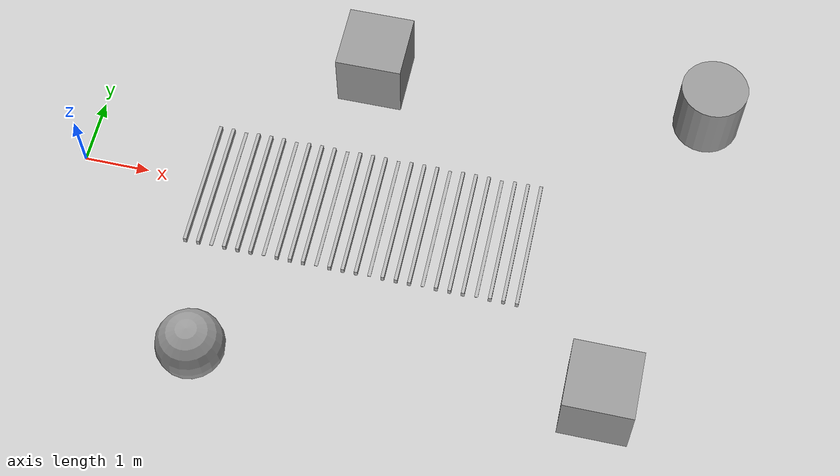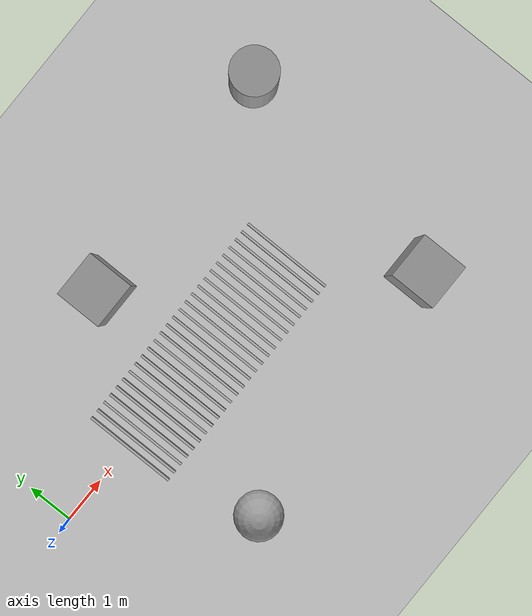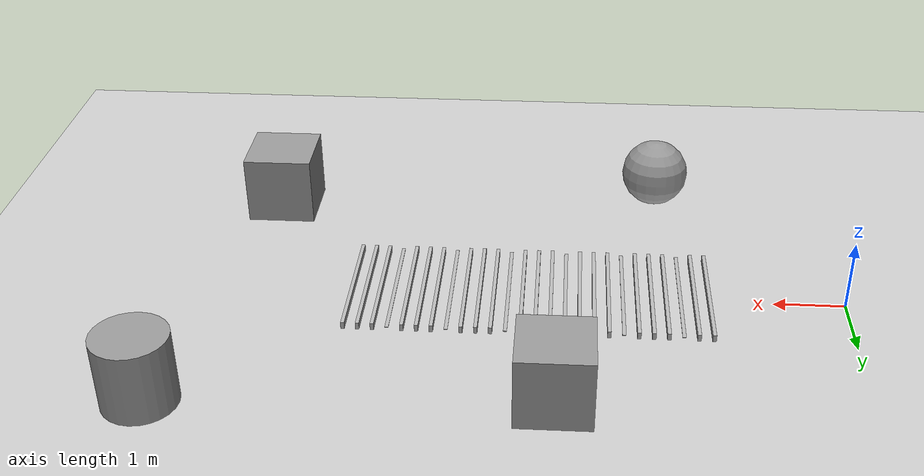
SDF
<sdf version="1.6">
 <world name="default">
  <light name="sun" type="directional">
   <pose>0 0 10 0 -0 0</pose>
   <diffuse>0.8 0.8 0.8 1</diffuse>
   <specular>0.2 0.2 0.2 1</specular>
   <attenuation>
    <range>1000</range>
    <constant>0.9</constant>
    <linear>0.01</linear>
    <quadratic>0.001</quadratic>
   </attenuation>
   <direction>-0.5 0.1 -0.9</direction>
  </light>
  <model name="ground_plane">
   <static>1</static>
   <link name="link">
    <collision name="collision">
     <geometry><plane><normal>0 0 1</normal><size>100 100</size></plane></geometry>
     <surface>
      <contact><collide_bitmask>65535</collide_bitmask></contact>
      <friction><ode><mu>100</mu><mu2>50</mu2></ode></friction>
     </surface>
    </collision>
    <visual name="visual">
     <cast_shadows>0</cast_shadows>
     <geometry><plane><normal>0 0 1</normal><size>100 100</size></plane></geometry>
     <material>
      <script><uri>file://media/materials/scripts/gazebo.material</uri><name>Gazebo/Grey</name></script>
     </material>
    </visual>
   </link>
  </model>
  <gravity>0 0 -9.8</gravity>
  <magnetic_field>6e-06 2.3e-05 -4.2e-05</magnetic_field>
  <atmosphere type="adiabatic"/>
  <physics name="default_physics" default="0" type="ode">
   <max_step_size>0.001</max_step_size>
   <real_time_factor>1</real_time_factor>
   <real_time_update_rate>1000</real_time_update_rate>
  </physics>
  <scene><ambient>0.4 0.4 0.4 1</ambient><background>0.7 0.7 0.7 1</background><shadows>1</shadows></scene>
  <audio><device>default</device></audio>
  <spherical_coordinates>
   <surface_model>EARTH_WGS84</surface_model>
   <latitude_deg>0</latitude_deg>
   <longitude_deg>0</longitude_deg>
   <elevation>0</elevation>
   <heading_deg>0</heading_deg>
  </spherical_coordinates>
  <model name="my_model">
   <link name="bot_wall0">
    <visual name="visual">
     <geometry><box><size>0.05 2 0.1</size></box></geometry>
     <material><script><uri>model://hallway/materials/scripts</uri><name>feature_3</name></script></material>
    </visual>
    <collision name="collision"><geometry><box><size>0.05 2 0.1</size></box></geometry></collision>
    <inertial>
     <inertia><ixx>1</ixx><ixy>0</ixy><ixz>0</ixz><iyy>1</iyy><iyz>0</iyz><izz>1</izz></inertia>
     <mass>1</mass>
    </inertial>
   </link>
   <link name="bot_wall1">
    <pose>0.2 0 0 0 -0 0</pose>
    <visual name="visual">
     <geometry><box><size>0.05 2 0.1</size></box></geometry>
     <material><script><uri>model://hallway/materials/scripts</uri><name>feature_3</name></script></material>
    </visual>
    <collision name="collision"><geometry><box><size>0.05 2 0.1</size></box></geometry></collision>
    <inertial>
     <inertia><ixx>1</ixx><ixy>0</ixy><ixz>0</ixz><iyy>1</iyy><iyz>0</iyz><izz>1</izz></inertia>
     <mass>1</mass>
    </inertial>
   </link>
   <link name="bot_wall2">
    <pose>0.4 0 0 0 -0 0</pose>
    <visual name="visual">
     <geometry><box><size>0.05 2 0.01</size></box></geometry>
     <material><script><uri>model://hallway/materials/scripts</uri><name>feature_3</name></script></material>
    </visual>
    <collision name="collision"><geometry><box><size>0.05 2 0.01</size></box></geometry></collision>
    <inertial>
     <inertia><ixx>1</ixx><ixy>0</ixy><ixz>0</ixz><iyy>1</iyy><iyz>0</iyz><izz>1</izz></inertia>
     <mass>1</mass>
    </inertial>
   </link>
   <link name="bot_wall3">
    <pose>0.6 0 0 0 -0 0</pose>
    <visual name="visual">
     <geometry><box><size>0.05 2 0.1</size></box></geometry>
     <material><script><uri>model://hallway/materials/scripts</uri><name>feature_3</name></script></material>
    </visual>
    <collision name="collision"><geometry><box><size>0.05 2 0.1</size></box></geometry></collision>
    <inertial>
     <inertia><ixx>1</ixx><ixy>0</ixy><ixz>0</ixz><iyy>1</iyy><iyz>0</iyz><izz>1</izz></inertia>
     <mass>1</mass>
    </inertial>
   </link>
   <link name="bot_wall4">
    <pose>0.8 0 0 0 -0 0</pose>
    <visual name="visual">
     <geometry><box><size>0.05 2 0.1</size></box></geometry>
     <material><script><uri>model://hallway/materials/scripts</uri><name>feature_3</name></script></material>
    </visual>
    <collision name="collision"><geometry><box><size>0.05 2 0.1</size></box></geometry></collision>
    <inertial>
     <inertia><ixx>1</ixx><ixy>0</ixy><ixz>0</ixz><iyy>1</iyy><iyz>0</iyz><izz>1</izz></inertia>
     <mass>1</mass>
    </inertial>
   </link>
   <link name="bot_wall5">
    <pose>1 0 0 0 -0 0</pose>
    <visual name="visual">
     <geometry><box><size>0.05 2 0.1</size></box></geometry>
     <material><script><uri>model://hallway/materials/scripts</uri><name>feature_3</name></script></material>
    </visual>
    <collision name="collision"><geometry><box><size>0.05 2 0.1</size></box></geometry></collision>
    <inertial>
     <inertia><ixx>1</ixx><ixy>0</ixy><ixz>0</ixz><iyy>1</iyy><iyz>0</iyz><izz>1</izz></inertia>
     <mass>1</mass>
    </inertial>
   </link>
   <link name="bot_wall6">
    <pose>1.2 0 0 0 -0 0</pose>
    <visual name="visual">
     <geometry><box><size>0.05 2 0.01</size></box></geometry>
     <material><script><uri>model://hallway/materials/scripts</uri><name>feature_3</name></script></material>
    </visual>
    <collision name="collision"><geometry><box><size>0.05 2 0.01</size></box></geometry></collision>
    <inertial>
     <inertia><ixx>1</ixx><ixy>0</ixy><ixz>0</ixz><iyy>1</iyy><iyz>0</iyz><izz>1</izz></inertia>
     <mass>1</mass>
    </inertial>
   </link>
   <link name="bot_wall7">
    <pose>1.4 0 0 0 -0 0</pose>
    <visual name="visual">
     <geometry><box><size>0.05 2 0.1</size></box></geometry>
     <material><script><uri>model://hallway/materials/scripts</uri><name>feature_3</name></script></material>
    </visual>
    <collision name="collision"><geometry><box><size>0.05 2 0.1</size></box></geometry></collision>
    <inertial>
     <inertia><ixx>1</ixx><ixy>0</ixy><ixz>0</ixz><iyy>1</iyy><iyz>0</iyz><izz>1</izz></inertia>
     <mass>1</mass>
    </inertial>
   </link>
   <link name="bot_wall8">
    <pose>1.6 0 0 0 -0 0</pose>
    <visual name="visual">
     <geometry><box><size>0.05 2 0.1</size></box></geometry>
     <material><script><uri>model://hallway/materials/scripts</uri><name>feature_3</name></script></material>
    </visual>
    <collision name="collision"><geometry><box><size>0.05 2 0.1</size></box></geometry></collision>
    <inertial>
     <inertia><ixx>1</ixx><ixy>0</ixy><ixz>0</ixz><iyy>1</iyy><iyz>0</iyz><izz>1</izz></inertia>
     <mass>1</mass>
    </inertial>
   </link>
   <link name="bot_wall9">
    <pose>1.8 0 0 0 -0 0</pose>
    <visual name="visual">
     <geometry><box><size>0.05 2 0.1</size></box></geometry>
     <material><script><uri>model://hallway/materials/scripts</uri><name>feature_3</name></script></material>
    </visual>
    <collision name="collision"><geometry><box><size>0.05 2 0.1</size></box></geometry></collision>
    <inertial>
     <inertia><ixx>1</ixx><ixy>0</ixy><ixz>0</ixz><iyy>1</iyy><iyz>0</iyz><izz>1</izz></inertia>
     <mass>1</mass>
    </inertial>
   </link>
   <link name="bot_wall10">
    <pose>2 0 0 0 -0 0</pose>
    <visual name="visual">
     <geometry><box><size>0.05 2 0.01</size></box></geometry>
     <material><script><uri>model://hallway/materials/scripts</uri><name>feature_3</name></script></material>
    </visual>
    <collision name="collision"><geometry><box><size>0.05 2 0.01</size></box></geometry></collision>
    <inertial>
     <inertia><ixx>1</ixx><ixy>0</ixy><ixz>0</ixz><iyy>1</iyy><iyz>0</iyz><izz>1</izz></inertia>
     <mass>1</mass>
    </inertial>
   </link>
   <link name="bot_wall11">
    <pose>2.2 0 0 0 -0 0</pose>
    <visual name="visual">
     <geometry><box><size>0.05 2 0.1</size></box></geometry>
     <material><script><uri>model://hallway/materials/scripts</uri><name>feature_3</name></script></material>
    </visual>
    <collision name="collision"><geometry><box><size>0.05 2 0.1</size></box></geometry></collision>
    <inertial>
     <inertia><ixx>1</ixx><ixy>0</ixy><ixz>0</ixz><iyy>1</iyy><iyz>0</iyz><izz>1</izz></inertia>
     <mass>1</mass>
    </inertial>
   </link>
   <link name="bot_wall12">
    <pose>2.4 0 0 0 -0 0</pose>
    <visual name="visual">
     <geometry><box><size>0.05 2 0.1</size></box></geometry>
     <material><script><uri>model://hallway/materials/scripts</uri><name>feature_3</name></script></material>
    </visual>
    <collision name="collision"><geometry><box><size>0.05 2 0.1</size></box></geometry></collision>
    <inertial>
     <inertia><ixx>1</ixx><ixy>0</ixy><ixz>0</ixz><iyy>1</iyy><iyz>0</iyz><izz>1</izz></inertia>
     <mass>1</mass>
    </inertial>
   </link>
   <link name="bot_wall13">
    <pose>2.6 0 0 0 -0 0</pose>
    <visual name="visual">
     <geometry><box><size>0.05 2 0.1</size></box></geometry>
     <material><script><uri>model://hallway/materials/scripts</uri><name>feature_3</name></script></material>
    </visual>
    <collision name="collision"><geometry><box><size>0.05 2 0.1</size></box></geometry></collision>
    <inertial>
     <inertia><ixx>1</ixx><ixy>0</ixy><ixz>0</ixz><iyy>1</iyy><iyz>0</iyz><izz>1</izz></inertia>
     <mass>1</mass>
    </inertial>
   </link>
   <link name="bot_wall14">
    <pose>2.8 0 0 0 -0 0</pose>
    <visual name="visual">
     <geometry><box><size>0.05 2 0.01</size></box></geometry>
     <material><script><uri>model://hallway/materials/scripts</uri><name>feature_3</name></script></material>
    </visual>
    <collision name="collision"><geometry><box><size>0.05 2 0.01</size></box></geometry></collision>
    <inertial>
     <inertia><ixx>1</ixx><ixy>0</ixy><ixz>0</ixz><iyy>1</iyy><iyz>0</iyz><izz>1</izz></inertia>
     <mass>1</mass>
    </inertial>
   </link>
   <link name="bot_wall15">
    <pose>3 0 0 0 -0 0</pose>
    <visual name="visual">
     <geometry><box><size>0.05 2 0.1</size></box></geometry>
     <material><script><uri>model://hallway/materials/scripts</uri><name>feature_3</name></script></material>
    </visual>
    <collision name="collision"><geometry><box><size>0.05 2 0.1</size></box></geometry></collision>
    <inertial>
     <inertia><ixx>1</ixx><ixy>0</ixy><ixz>0</ixz><iyy>1</iyy><iyz>0</iyz><izz>1</izz></inertia>
     <mass>1</mass>
    </inertial>
   </link>
   <link name="bot_wall16">
    <pose>3.2 0 0 0 -0 0</pose>
    <visual name="visual">
     <geometry><box><size>0.05 2 0.1</size></box></geometry>
     <material><script><uri>model://hallway/materials/scripts</uri><name>feature_3</name></script></material>
    </visual>
    <collision name="collision"><geometry><box><size>0.05 2 0.1</size></box></geometry></collision>
    <inertial>
     <inertia><ixx>1</ixx><ixy>0</ixy><ixz>0</ixz><iyy>1</iyy><iyz>0</iyz><izz>1</izz></inertia>
     <mass>1</mass>
    </inertial>
   </link>
   <link name="bot_wall17">
    <pose>3.4 0 0 0 -0 0</pose>
    <visual name="visual">
     <geometry><box><size>0.05 2 0.1</size></box></geometry>
     <material><script><uri>model://hallway/materials/scripts</uri><name>feature_3</name></script></material>
    </visual>
    <collision name="collision"><geometry><box><size>0.05 2 0.1</size></box></geometry></collision>
    <inertial>
     <inertia><ixx>1</ixx><ixy>0</ixy><ixz>0</ixz><iyy>1</iyy><iyz>0</iyz><izz>1</izz></inertia>
     <mass>1</mass>
    </inertial>
   </link>
   <link name="bot_wall18">
    <pose>3.6 0 0 0 -0 0</pose>
    <visual name="visual">
     <geometry><box><size>0.05 2 0.01</size></box></geometry>
     <material><script><uri>model://hallway/materials/scripts</uri><name>feature_3</name></script></material>
    </visual>
    <collision name="collision"><geometry><box><size>0.05 2 0.01</size></box></geometry></collision>
    <inertial>
     <inertia><ixx>1</ixx><ixy>0</ixy><ixz>0</ixz><iyy>1</iyy><iyz>0</iyz><izz>1</izz></inertia>
     <mass>1</mass>
    </inertial>
   </link>
   <link name="bot_wall19">
    <pose>3.8 0 0 0 -0 0</pose>
    <visual name="visual">
     <geometry><box><size>0.05 2 0.1</size></box></geometry>
     <material><script><uri>model://hallway/materials/scripts</uri><name>feature_3</name></script></material>
    </visual>
    <collision name="collision"><geometry><box><size>0.05 2 0.1</size></box></geometry></collision>
    <inertial>
     <inertia><ixx>1</ixx><ixy>0</ixy><ixz>0</ixz><iyy>1</iyy><iyz>0</iyz><izz>1</izz></inertia>
     <mass>1</mass>
    </inertial>
   </link>
   <link name="bot_wall20">
    <pose>4 0 0 0 -0 0</pose>
    <visual name="visual">
     <geometry><box><size>0.05 2 0.1</size></box></geometry>
     <material><script><uri>model://hallway/materials/scripts</uri><name>feature_3</name></script></material>
    </visual>
    <collision name="collision"><geometry><box><size>0.05 2 0.1</size></box></geometry></collision>
    <inertial>
     <inertia><ixx>1</ixx><ixy>0</ixy><ixz>0</ixz><iyy>1</iyy><iyz>0</iyz><izz>1</izz></inertia>
     <mass>1</mass>
    </inertial>
   </link>
   <link name="bot_wall21">
    <pose>4.2 0 0 0 -0 0</pose>
    <visual name="visual">
     <geometry><box><size>0.05 2 0.1</size></box></geometry>
     <material><script><uri>model://hallway/materials/scripts</uri><name>feature_3</name></script></material>
    </visual>
    <collision name="collision"><geometry><box><size>0.05 2 0.1</size></box></geometry></collision>
    <inertial>
     <inertia><ixx>1</ixx><ixy>0</ixy><ixz>0</ixz><iyy>1</iyy><iyz>0</iyz><izz>1</izz></inertia>
     <mass>1</mass>
    </inertial>
   </link>
   <link name="bot_wall22">
    <pose>4.4 0 0 0 -0 0</pose>
    <visual name="visual">
     <geometry><box><size>0.05 2 0.01</size></box></geometry>
     <material><script><uri>model://hallway/materials/scripts</uri><name>feature_3</name></script></material>
    </visual>
    <collision name="collision"><geometry><box><size>0.05 2 0.01</size></box></geometry></collision>
    <inertial>
     <inertia><ixx>1</ixx><ixy>0</ixy><ixz>0</ixz><iyy>1</iyy><iyz>0</iyz><izz>1</izz></inertia>
     <mass>1</mass>
    </inertial>
   </link>
   <link name="bot_wall23">
    <pose>4.6 0 0 0 -0 0</pose>
    <visual name="visual">
     <geometry><box><size>0.05 2 0.1</size></box></geometry>
     <material><script><uri>model://hallway/materials/scripts</uri><name>feature_3</name></script></material>
    </visual>
    <collision name="collision"><geometry><box><size>0.05 2 0.1</size></box></geometry></collision>
    <inertial>
     <inertia><ixx>1</ixx><ixy>0</ixy><ixz>0</ixz><iyy>1</iyy><iyz>0</iyz><izz>1</izz></inertia>
     <mass>1</mass>
    </inertial>
   </link>
   <link name="bot_wall24">
    <pose>4.8 0 0 0 -0 0</pose>
    <visual name="visual">
     <geometry><box><size>0.05 2 0.1</size></box></geometry>
     <material><script><uri>model://hallway/materials/scripts</uri><name>feature_3</name></script></material>
    </visual>
    <collision name="collision"><geometry><box><size>0.05 2 0.1</size></box></geometry></collision>
    <inertial>
     <inertia><ixx>1</ixx><ixy>0</ixy><ixz>0</ixz><iyy>1</iyy><iyz>0</iyz><izz>1</izz></inertia>
     <mass>1</mass>
    </inertial>
   </link>
   <link name="bot_wall25">
    <pose>5 0 0 0 -0 0</pose>
    <visual name="visual">
     <geometry><box><size>0.05 2 0.1</size></box></geometry>
     <material><script><uri>model://hallway/materials/scripts</uri><name>feature_3</name></script></material>
    </visual>
    <collision name="collision"><geometry><box><size>0.05 2 0.1</size></box></geometry></collision>
    <inertial>
     <inertia><ixx>1</ixx><ixy>0</ixy><ixz>0</ixz><iyy>1</iyy><iyz>0</iyz><izz>1</izz></inertia>
     <mass>1</mass>
    </inertial>
   </link>
   <joint name="joint0" type="fixed"><parent>bot_wall0</parent><child>bot_wall1</child></joint>
   <joint name="joint1" type="fixed"><parent>bot_wall1</parent><child>bot_wall2</child></joint>
   <joint name="joint2" type="fixed"><parent>bot_wall2</parent><child>bot_wall3</child></joint>
   <joint name="joint3" type="fixed"><parent>bot_wall3</parent><child>bot_wall4</child></joint>
   <joint name="joint4" type="fixed"><parent>bot_wall4</parent><child>bot_wall5</child></joint>
   <joint name="joint5" type="fixed"><parent>bot_wall5</parent><child>bot_wall6</child></joint>
   <joint name="joint6" type="fixed"><parent>bot_wall6</parent><child>bot_wall7</child></joint>
   <joint name="joint7" type="fixed"><parent>bot_wall7</parent><child>bot_wall8</child></joint>
   <joint name="joint8" type="fixed"><parent>bot_wall8</parent><child>bot_wall9</child></joint>
   <joint name="joint9" type="fixed"><parent>bot_wall9</parent><child>bot_wall10</child></joint>
   <joint name="joint10" type="fixed"><parent>bot_wall10</parent><child>bot_wall11</child></joint>
   <joint name="joint11" type="fixed"><parent>bot_wall11</parent><child>bot_wall12</child></joint>
   <joint name="joint12" type="fixed"><parent>bot_wall12</parent><child>bot_wall13</child></joint>
   <joint name="joint13" type="fixed"><parent>bot_wall13</parent><child>bot_wall14</child></joint>
   <joint name="joint14" type="fixed"><parent>bot_wall14</parent><child>bot_wall15</child></joint>
   <joint name="joint15" type="fixed"><parent>bot_wall15</parent><child>bot_wall16</child></joint>
   <joint name="joint16" type="fixed"><parent>bot_wall16</parent><child>bot_wall17</child></joint>
   <joint name="joint17" type="fixed"><parent>bot_wall17</parent><child>bot_wall18</child></joint>
   <joint name="joint18" type="fixed"><parent>bot_wall18</parent><child>bot_wall19</child></joint>
   <joint name="joint19" type="fixed"><parent>bot_wall19</parent><child>bot_wall20</child></joint>
   <joint name="joint20" type="fixed"><parent>bot_wall20</parent><child>bot_wall21</child></joint>
   <joint name="joint21" type="fixed"><parent>bot_wall21</parent><child>bot_wall22</child></joint>
   <joint name="joint22" type="fixed"><parent>bot_wall22</parent><child>bot_wall23</child></joint>
   <joint name="joint23" type="fixed"><parent>bot_wall23</parent><child>bot_wall24</child></joint>
   <joint name="joint24" type="fixed"><parent>bot_wall24</parent><child>bot_wall25</child></joint>
   <pose>1.88491 -0.058567 0.049995 -1e-06 -1e-06 7.4e-05</pose>
  </model>
  <model name="unit_box">
   <pose>3.99988 2.38803 0.499995 -1e-05 -0 -0</pose>
   <link name="link">
    <inertial>
     <mass>1</mass>
     <inertia>
      <ixx>0.166667</ixx>
      <ixy>0</ixy>
      <ixz>0</ixz>
      <iyy>0.166667</iyy>
      <iyz>0</iyz>
      <izz>0.166667</izz>
     </inertia>
    </inertial>
    <collision name="collision"><geometry><box><size>1 1 1</size></box></geometry></collision>
    <visual name="visual">
     <geometry><box><size>1 1 1</size></box></geometry>
     <material>
      <script><name>Gazebo/Grey</name><uri>file://media/materials/scripts/gazebo.material</uri></script>
     </material>
    </visual>
   </link>
  </model>
  <model name="unit_box_0">
   <pose>8.27773 -2.34882 0.499995 0 1e-05 0</pose>
   <link name="link">
    <inertial>
     <mass>1</mass>
     <inertia>
      <ixx>0.166667</ixx>
      <ixy>0</ixy>
      <ixz>0</ixz>
      <iyy>0.166667</iyy>
      <iyz>0</iyz>
      <izz>0.166667</izz>
     </inertia>
    </inertial>
    <collision name="collision"><geometry><box><size>1 1 1</size></box></geometry></collision>
    <visual name="visual">
     <geometry><box><size>1 1 1</size></box></geometry>
     <material>
      <script><name>Gazebo/Grey</name><uri>file://media/materials/scripts/gazebo.material</uri></script>
     </material>
    </visual>
   </link>
  </model>
  <model name="unit_sphere">
   <pose>2.53817 -2.8385 0.5 0 -0 0</pose>
   <link name="link">
    <inertial>
     <mass>1</mass>
     <inertia><ixx>0.1</ixx><ixy>0</ixy><ixz>0</ixz><iyy>0.1</iyy><iyz>0</iyz><izz>0.1</izz></inertia>
    </inertial>
    <collision name="collision"><geometry><sphere><radius>0.5</radius></sphere></geometry></collision>
    <visual name="visual">
     <geometry><sphere><radius>0.5</radius></sphere></geometry>
     <material>
      <script><name>Gazebo/Grey</name><uri>file://media/materials/scripts/gazebo.material</uri></script>
     </material>
    </visual>
   </link>
  </model>
  <model name="unit_cylinder">
   <pose>9.15828 2.63213 0.499997 3e-06 4e-06 -0</pose>
   <link name="link">
    <inertial>
     <mass>1</mass>
     <inertia><ixx>0.145833</ixx><ixy>0</ixy><ixz>0</ixz><iyy>0.145833</iyy><iyz>0</iyz><izz>0.125</izz></inertia>
    </inertial>
    <collision name="collision">
     <geometry><cylinder><radius>0.5</radius><length>1</length></cylinder></geometry>
    </collision>
    <visual name="visual">
     <geometry><cylinder><radius>0.5</radius><length>1</length></cylinder></geometry>
     <material>
      <script><name>Gazebo/Grey</name><uri>file://media/materials/scripts/gazebo.material</uri></script>
     </material>
    </visual>
   </link>
  </model>
 </world>
</sdf>
